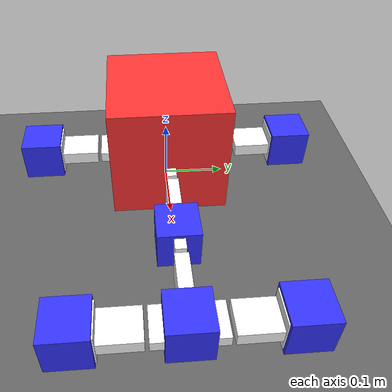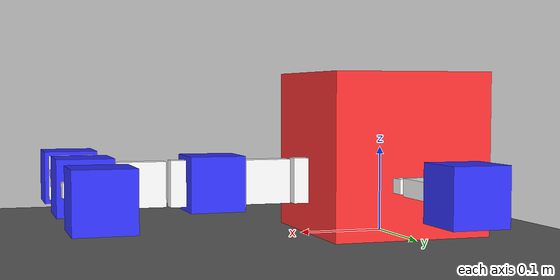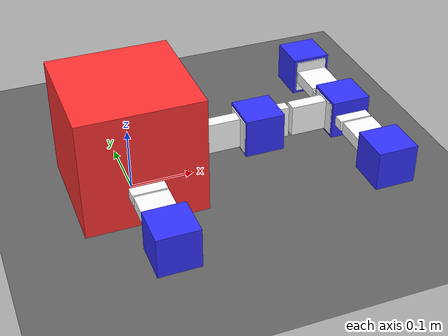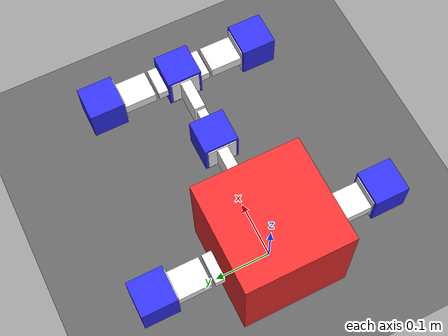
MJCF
<mujoco model="scene">
  <compiler angle="radian" autolimits="true"/>
  <option timestep="0.001" integrator="RK4"/>
  <visual>
    <headlight active="0"/>
  </visual>
  <statistic meansize="0.0848029" extent="2" center="0 0 0"/>
  <default class="main">
    <default class="/"/>
    <default class="mbs0/"/>
    <default class="mbs1/"/>
  </default>
  <asset>
    <material name="heightmap_0_material" class="/" rgba="0.392157 0.392157 0.392157 1"/>
    <material name="mbs1/geom_mbs1_geom0_material" class="mbs1/" rgba="1 0.196078 0.196078 1"/>
    <material name="mbs1/geom_mbs1_geom1_material" class="mbs1/"/>
    <material name="mbs1/geom_mbs1_geom2_material" class="mbs1/"/>
    <material name="mbs1/geom_mbs1_geom3_material" class="mbs1/"/>
    <material name="mbs1/geom_mbs1_link0_geom0_material" class="mbs1/"/>
    <material name="mbs1/geom_mbs1_link0_geom1_material" class="mbs1/"/>
    <material name="mbs1/geom_mbs1_link0_geom2_material" class="mbs1/" rgba="0.196078 0.196078 1 1"/>
    <material name="mbs1/geom_mbs1_link0_geom3_material" class="mbs1/"/>
    <material name="mbs1/geom_mbs1_link0_link1_geom0_material" class="mbs1/"/>
    <material name="mbs1/geom_mbs1_link0_link1_geom1_material" class="mbs1/"/>
    <material name="mbs1/geom_mbs1_link0_link1_geom2_material" class="mbs1/" rgba="0.196078 0.196078 1 1"/>
    <material name="mbs1/geom_mbs1_link0_link1_geom3_material" class="mbs1/"/>
    <material name="mbs1/geom_mbs1_link0_link1_geom4_material" class="mbs1/"/>
    <material name="mbs1/geom_mbs1_link0_link1_link1_geom0_material" class="mbs1/"/>
    <material name="mbs1/geom_mbs1_link0_link1_link1_geom1_material" class="mbs1/"/>
    <material name="mbs1/geom_mbs1_link0_link1_link1_geom2_material" class="mbs1/" rgba="0.196078 0.196078 1 1"/>
    <material name="mbs1/geom_mbs1_link0_link1_link2_geom0_material" class="mbs1/"/>
    <material name="mbs1/geom_mbs1_link0_link1_link2_geom1_material" class="mbs1/"/>
    <material name="mbs1/geom_mbs1_link0_link1_link2_geom2_material" class="mbs1/" rgba="0.196078 0.196078 1 1"/>
    <material name="mbs1/geom_mbs1_link1_geom0_material" class="mbs1/"/>
    <material name="mbs1/geom_mbs1_link1_geom1_material" class="mbs1/"/>
    <material name="mbs1/geom_mbs1_link1_geom2_material" class="mbs1/" rgba="0.196078 0.196078 1 1"/>
    <material name="mbs1/geom_mbs1_link2_geom0_material" class="mbs1/"/>
    <material name="mbs1/geom_mbs1_link2_geom1_material" class="mbs1/"/>
    <material name="mbs1/geom_mbs1_link2_geom2_material" class="mbs1/" rgba="0.196078 0.196078 1 1"/>
  </asset>
  <worldbody>
    <geom name="//unnamed_geom_0" class="/" size="10 10 1" quat="0 0 0 1" type="plane" material="heightmap_0_material"/>
    <light name="//unnamed_light_0" class="/" pos="0 0 100" dir="0 0 -1" directional="true" castshadow="false" ambient="0.5 0.5 0.5"/>
    <body name="mbs0/" quat="0 0 0 1"/>
    <body name="mbs1/" pos="0 0 0.0943294" quat="0 0 0 1">
      <joint name="mbs1/" type="free"/>
      <geom name="mbs1/mbs1_geom0" class="mbs1/" size="0.0943294 0.0943294 0.0943294" type="box" material="mbs1/geom_mbs1_geom0_material"/>
      <geom name="mbs1/mbs1_geom1" class="mbs1/" size="0.009 0.0265 0.00829455" pos="-0.103329 0 -0.032" quat="0 0 0.707107 0.707107" type="box" material="mbs1/geom_mbs1_geom1_material"/>
      <geom name="mbs1/mbs1_geom2" class="mbs1/" size="0.009 0.0265 0.00829455" pos="0 0.103329 -0.032" quat="0.707107 0 0 0.707107" type="box" material="mbs1/geom_mbs1_geom2_material"/>
      <geom name="mbs1/mbs1_geom3" class="mbs1/" size="0.009 0.0265 0.00829455" pos="0 -0.103329 -0.032" quat="0.707107 0 0 -0.707107" type="box" material="mbs1/geom_mbs1_geom3_material"/>
      <site name="mbs1/mbs1_site_imu_0" class="mbs1/" pos="0 0 0" quat="0 0 0 1"/>
      <body name="mbs1/mbs1_link0" pos="-0.128854 0 -0.032" quat="0 0 0.707107 0.707107">
        <inertial pos="0.0569221 0 0" quat="0 0.707107 0 0.707107" mass="0.15975" diaginertia="0.000269785 0.000255602 7.03325e-05"/>
        <joint name="mbs1/mbs1_joint0" class="mbs1/" pos="0 0 0" axis="0 1 0" range="-1.0472 1.0472" armature="0.002"/>
        <geom name="mbs1/mbs1_link0_geom0" class="mbs1/" size="0.02915 0.0256 0.01" pos="0.018 0 0" type="box" material="mbs1/geom_mbs1_link0_geom0_material"/>
        <geom name="mbs1/mbs1_link0_geom1" class="mbs1/" size="0.001 0.0265 0.0265" pos="0.04815 0 0" type="box" material="mbs1/geom_mbs1_link0_geom1_material"/>
        <geom name="mbs1/mbs1_link0_geom2" class="mbs1/" size="0.0314431 0.0314431 0.0314431" pos="0.0805931 0 0" quat="0.707107 -0.707107 0 0" type="box" material="mbs1/geom_mbs1_link0_geom2_material"/>
        <geom name="mbs1/mbs1_link0_geom3" class="mbs1/" size="0.009 0.0265 0.00829455" pos="0.121036 0 0" type="box" material="mbs1/geom_mbs1_link0_geom3_material"/>
        <body name="mbs1/mbs1_link0_link1" pos="0.146561 0 0">
          <inertial pos="0.0553675 0 0" quat="0.5 0.5 0.5 0.5" mass="0.17607" diaginertia="0.000267341 0.000217932 0.000128047"/>
          <joint name="mbs1/mbs1_link0_joint1" class="mbs1/" pos="0 0 0" axis="0 1 0" range="-1.0472 1.0472" armature="0.002"/>
          <geom name="mbs1/mbs1_link0_link1_geom0" class="mbs1/" size="0.02915 0.0256 0.01" pos="0.018 0 0" type="box" material="mbs1/geom_mbs1_link0_link1_geom0_material"/>
          <geom name="mbs1/mbs1_link0_link1_geom1" class="mbs1/" size="0.001 0.0265 0.0265" pos="0.04815 0 0" type="box" material="mbs1/geom_mbs1_link0_link1_geom1_material"/>
          <geom name="mbs1/mbs1_link0_link1_geom2" class="mbs1/" size="0.0314431 0.0314431 0.0314431" pos="0.0805931 0 0" quat="0.707107 -0.707107 0 0" type="box" material="mbs1/geom_mbs1_link0_link1_geom2_material"/>
          <geom name="mbs1/mbs1_link0_link1_geom3" class="mbs1/" size="0.009 0.0265 0.00829455" pos="0.0805931 0 -0.0404431" quat="0.5 -0.5 0.5 0.5" type="box" material="mbs1/geom_mbs1_link0_link1_geom3_material"/>
          <geom name="mbs1/mbs1_link0_link1_geom4" class="mbs1/" size="0.009 0.0265 0.00829455" pos="0.0805931 0 0.0404431" quat="0.5 -0.5 -0.5 -0.5" type="box" material="mbs1/geom_mbs1_link0_link1_geom4_material"/>
          <body name="mbs1/mbs1_link0_link1_link1" pos="0.0805931 0 -0.0659681" quat="0.5 -0.5 0.5 0.5">
            <inertial pos="0.0496269 0 0" quat="0 0.707107 0 0.707107" mass="0.14343" diaginertia="0.000190805 0.000180068 6.6138e-05"/>
            <joint name="mbs1/mbs1_link0_link1_joint1" class="mbs1/" pos="0 0 0" axis="0 1 0" range="-1.0472 1.0472" armature="0.002"/>
            <geom name="mbs1/mbs1_link0_link1_link1_geom0" class="mbs1/" size="0.02915 0.0256 0.01" pos="0.018 0 0" type="box" material="mbs1/geom_mbs1_link0_link1_link1_geom0_material"/>
            <geom name="mbs1/mbs1_link0_link1_link1_geom1" class="mbs1/" size="0.001 0.0265 0.0265" pos="0.04815 0 0" type="box" material="mbs1/geom_mbs1_link0_link1_link1_geom1_material"/>
            <geom name="mbs1/mbs1_link0_link1_link1_geom2" class="mbs1/" size="0.0314431 0.0314431 0.0314431" pos="0.0805931 0 0" type="box" material="mbs1/geom_mbs1_link0_link1_link1_geom2_material"/>
          </body>
          <body name="mbs1/mbs1_link0_link1_link2" pos="0.0805931 0 0.0659681" quat="0.5 -0.5 -0.5 -0.5">
            <inertial pos="0.0496269 0 0" quat="0 0.707107 0 0.707107" mass="0.14343" diaginertia="0.000190805 0.000180068 6.6138e-05"/>
            <joint name="mbs1/mbs1_link0_link1_joint2" class="mbs1/" pos="0 0 0" axis="0 1 0" range="-1.0472 1.0472" armature="0.002"/>
            <geom name="mbs1/mbs1_link0_link1_link2_geom0" class="mbs1/" size="0.02915 0.0256 0.01" pos="0.018 0 0" type="box" material="mbs1/geom_mbs1_link0_link1_link2_geom0_material"/>
            <geom name="mbs1/mbs1_link0_link1_link2_geom1" class="mbs1/" size="0.001 0.0265 0.0265" pos="0.04815 0 0" type="box" material="mbs1/geom_mbs1_link0_link1_link2_geom1_material"/>
            <geom name="mbs1/mbs1_link0_link1_link2_geom2" class="mbs1/" size="0.0314431 0.0314431 0.0314431" pos="0.0805931 0 0" type="box" material="mbs1/geom_mbs1_link0_link1_link2_geom2_material"/>
          </body>
        </body>
      </body>
      <body name="mbs1/mbs1_link1" pos="0 0.128854 -0.032" quat="0.707107 0 0 0.707107">
        <inertial pos="0.0496269 0 0" quat="0 0.707107 0 0.707107" mass="0.14343" diaginertia="0.000190805 0.000180068 6.6138e-05"/>
        <joint name="mbs1/mbs1_joint1" class="mbs1/" pos="0 0 0" axis="0 1 0" range="-1.0472 1.0472" armature="0.002"/>
        <geom name="mbs1/mbs1_link1_geom0" class="mbs1/" size="0.02915 0.0256 0.01" pos="0.018 0 0" type="box" material="mbs1/geom_mbs1_link1_geom0_material"/>
        <geom name="mbs1/mbs1_link1_geom1" class="mbs1/" size="0.001 0.0265 0.0265" pos="0.04815 0 0" type="box" material="mbs1/geom_mbs1_link1_geom1_material"/>
        <geom name="mbs1/mbs1_link1_geom2" class="mbs1/" size="0.0314431 0.0314431 0.0314431" pos="0.0805931 0 0" type="box" material="mbs1/geom_mbs1_link1_geom2_material"/>
      </body>
      <body name="mbs1/mbs1_link2" pos="0 -0.128854 -0.032" quat="0.707107 0 0 -0.707107">
        <inertial pos="0.0496269 0 0" quat="0 0.707107 0 0.707107" mass="0.14343" diaginertia="0.000190805 0.000180068 6.6138e-05"/>
        <joint name="mbs1/mbs1_joint2" class="mbs1/" pos="0 0 0" axis="0 1 0" range="-1.0472 1.0472" armature="0.002"/>
        <geom name="mbs1/mbs1_link2_geom0" class="mbs1/" size="0.02915 0.0256 0.01" pos="0.018 0 0" type="box" material="mbs1/geom_mbs1_link2_geom0_material"/>
        <geom name="mbs1/mbs1_link2_geom1" class="mbs1/" size="0.001 0.0265 0.0265" pos="0.04815 0 0" type="box" material="mbs1/geom_mbs1_link2_geom1_material"/>
        <geom name="mbs1/mbs1_link2_geom2" class="mbs1/" size="0.0314431 0.0314431 0.0314431" pos="0.0805931 0 0" type="box" material="mbs1/geom_mbs1_link2_geom2_material"/>
      </body>
    </body>
  </worldbody>
  <actuator>
    <general name="mbs1/actuator_position_mbs1_joint0" class="mbs1/" joint="mbs1/mbs1_joint0" biastype="affine" gainprm="5 0 0 0 0 0 0 0 0 0" biasprm="0 -5 0 0 0 0 0 0 0 0"/>
    <general name="mbs1/actuator_velocity_mbs1_joint0" class="mbs1/" joint="mbs1/mbs1_joint0" biastype="affine" gainprm="0.05 0 0 0 0 0 0 0 0 0" biasprm="0 0 -0.05 0 0 0 0 0 0 0"/>
    <general name="mbs1/actuator_position_mbs1_link0_joint1" class="mbs1/" joint="mbs1/mbs1_link0_joint1" biastype="affine" gainprm="5 0 0 0 0 0 0 0 0 0" biasprm="0 -5 0 0 0 0 0 0 0 0"/>
    <general name="mbs1/actuator_velocity_mbs1_link0_joint1" class="mbs1/" joint="mbs1/mbs1_link0_joint1" biastype="affine" gainprm="0.05 0 0 0 0 0 0 0 0 0" biasprm="0 0 -0.05 0 0 0 0 0 0 0"/>
    <general name="mbs1/actuator_position_mbs1_link0_link1_joint1" class="mbs1/" joint="mbs1/mbs1_link0_link1_joint1" biastype="affine" gainprm="5 0 0 0 0 0 0 0 0 0" biasprm="0 -5 0 0 0 0 0 0 0 0"/>
    <general name="mbs1/actuator_velocity_mbs1_link0_link1_joint1" class="mbs1/" joint="mbs1/mbs1_link0_link1_joint1" biastype="affine" gainprm="0.05 0 0 0 0 0 0 0 0 0" biasprm="0 0 -0.05 0 0 0 0 0 0 0"/>
    <general name="mbs1/actuator_position_mbs1_link0_link1_joint2" class="mbs1/" joint="mbs1/mbs1_link0_link1_joint2" biastype="affine" gainprm="5 0 0 0 0 0 0 0 0 0" biasprm="0 -5 0 0 0 0 0 0 0 0"/>
    <general name="mbs1/actuator_velocity_mbs1_link0_link1_joint2" class="mbs1/" joint="mbs1/mbs1_link0_link1_joint2" biastype="affine" gainprm="0.05 0 0 0 0 0 0 0 0 0" biasprm="0 0 -0.05 0 0 0 0 0 0 0"/>
    <general name="mbs1/actuator_position_mbs1_joint1" class="mbs1/" joint="mbs1/mbs1_joint1" biastype="affine" gainprm="5 0 0 0 0 0 0 0 0 0" biasprm="0 -5 0 0 0 0 0 0 0 0"/>
    <general name="mbs1/actuator_velocity_mbs1_joint1" class="mbs1/" joint="mbs1/mbs1_joint1" biastype="affine" gainprm="0.05 0 0 0 0 0 0 0 0 0" biasprm="0 0 -0.05 0 0 0 0 0 0 0"/>
    <general name="mbs1/actuator_position_mbs1_joint2" class="mbs1/" joint="mbs1/mbs1_joint2" biastype="affine" gainprm="5 0 0 0 0 0 0 0 0 0" biasprm="0 -5 0 0 0 0 0 0 0 0"/>
    <general name="mbs1/actuator_velocity_mbs1_joint2" class="mbs1/" joint="mbs1/mbs1_joint2" biastype="affine" gainprm="0.05 0 0 0 0 0 0 0 0 0" biasprm="0 0 -0.05 0 0 0 0 0 0 0"/>
  </actuator>
  <sensor>
    <gyro site="mbs1/mbs1_site_imu_0" name="mbs1/imu_gyro_mbs1_0"/>
    <accelerometer site="mbs1/mbs1_site_imu_0" name="mbs1/imu_accelerometer_mbs1_0"/>
  </sensor>
</mujoco>
